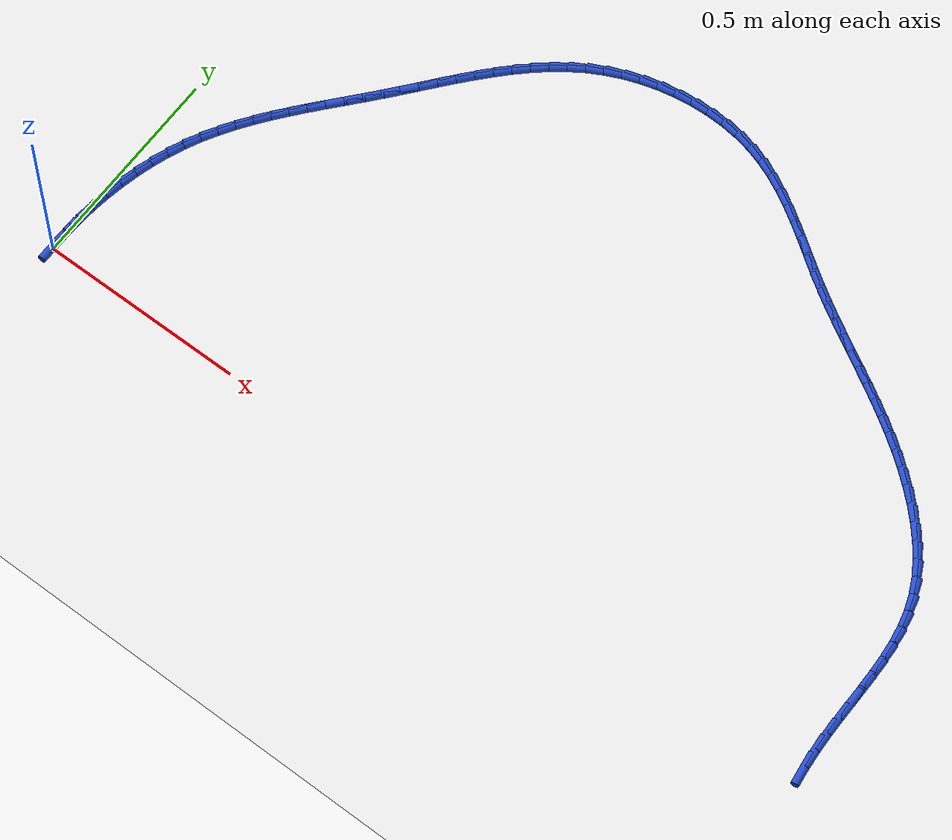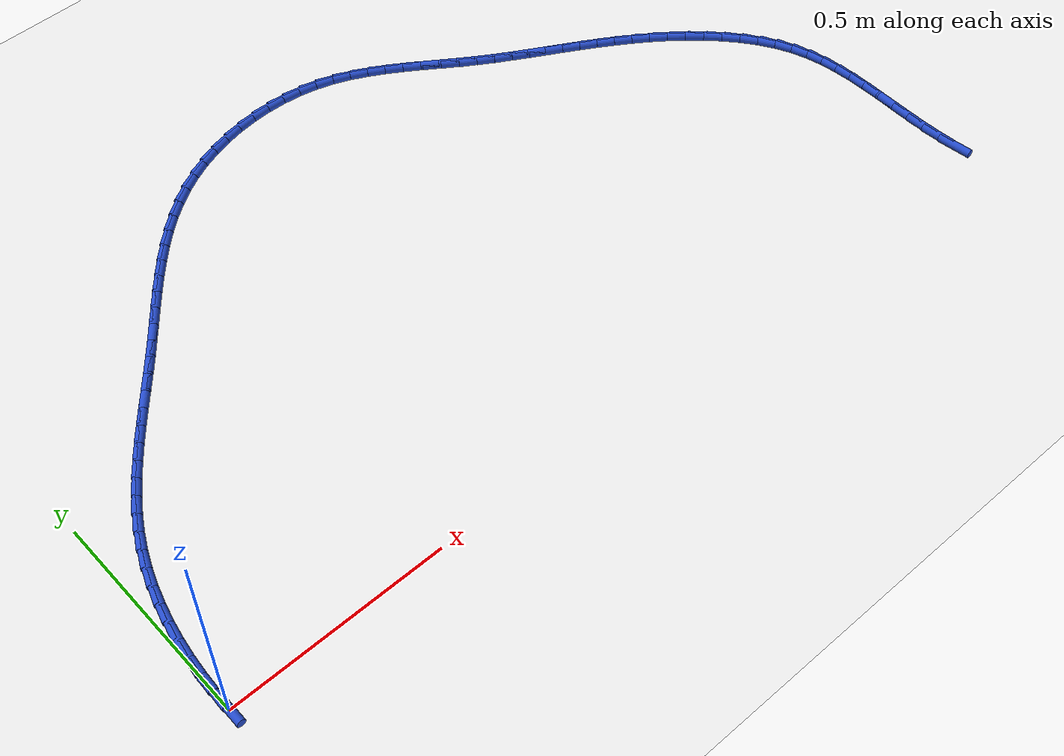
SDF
<sdf version="1.6">
 <world name="default">
  <model name="ground_plane">
   <static>1</static>
   <link name="link">
    <collision name="collision">
     <geometry><plane><normal>0 0 1</normal><size>100 100</size></plane></geometry>
     <surface><friction><ode><mu>100</mu><mu2>50</mu2></ode></friction></surface>
    </collision>
    <visual name="visual">
     <cast_shadows>0</cast_shadows>
     <geometry><plane><normal>0 0 1</normal><size>100 100</size></plane></geometry>
     <material>
      <script><uri>file://media/materials/scripts/gazebo.material</uri><name>Gazebo/WhiteGlow</name></script>
     </material>
    </visual>
   </link>
  </model>
  <model name="line">
   <link name="link_1">
    <pose>0.00028746095920389667 0.04235715882042236 0.01 0 1.57 1.522763177604085</pose>
    <collision name="collision">
     <geometry><cylinder><radius>0.01</radius><length>0.08</length></cylinder></geometry>
    </collision>
    <visual name="visual">
     <material>
      <script><name>Gazebo/Blue</name><uri>file://media/materials/scripts/gazebo.material</uri></script>
     </material>
     <geometry><cylinder><radius>0.01</radius><length>0.08</length></cylinder></geometry>
    </visual>
   </link>
   <link name="link_2">
    <pose>0.0023284698408756674 0.0848161483708669 0.01 0 1.57 1.4801706708943538</pose>
    <collision name="collision">
     <geometry><cylinder><radius>0.01</radius><length>0.08</length></cylinder></geometry>
    </collision>
    <visual name="visual">
     <material>
      <script><name>Gazebo/Blue</name><uri>file://media/materials/scripts/gazebo.material</uri></script>
     </material>
     <geometry><cylinder><radius>0.01</radius><length>0.08</length></cylinder></geometry>
    </visual>
   </link>
   <link name="link_3">
    <pose>0.00618078458582902 0.1272077047341136 0.01 0 1.57 1.4358977339599144</pose>
    <collision name="collision">
     <geometry><cylinder><radius>0.01</radius><length>0.08</length></cylinder></geometry>
    </collision>
    <visual name="visual">
     <material>
      <script><name>Gazebo/Blue</name><uri>file://media/materials/scripts/gazebo.material</uri></script>
     </material>
     <geometry><cylinder><radius>0.01</radius><length>0.08</length></cylinder></geometry>
    </visual>
   </link>
   <link name="link_4">
    <pose>0.011902163134877644 0.1693625639929425 0.01 0 1.57 1.3896101384911503</pose>
    <collision name="collision">
     <geometry><cylinder><radius>0.01</radius><length>0.08</length></cylinder></geometry>
    </collision>
    <visual name="visual">
     <material>
      <script><name>Gazebo/Blue</name><uri>file://media/materials/scripts/gazebo.material</uri></script>
     </material>
     <geometry><cylinder><radius>0.01</radius><length>0.08</length></cylinder></geometry>
    </visual>
   </link>
   <link name="link_5">
    <pose>0.019550363428835253 0.2111114622301337 0.01 0 1.57 1.3409750623026198</pose>
    <collision name="collision">
     <geometry><cylinder><radius>0.01</radius><length>0.08</length></cylinder></geometry>
    </collision>
    <visual name="visual">
     <material>
      <script><name>Gazebo/Blue</name><uri>file://media/materials/scripts/gazebo.material</uri></script>
     </material>
     <geometry><cylinder><radius>0.01</radius><length>0.08</length></cylinder></geometry>
    </visual>
   </link>
   <link name="link_6">
    <pose>0.029183143408515556 0.2522851355284672 0.01 0 1.57 1.2896651377609418</pose>
    <collision name="collision">
     <geometry><cylinder><radius>0.01</radius><length>0.08</length></cylinder></geometry>
    </collision>
    <visual name="visual">
     <material>
      <script><name>Gazebo/Blue</name><uri>file://media/materials/scripts/gazebo.material</uri></script>
     </material>
     <geometry><cylinder><radius>0.01</radius><length>0.08</length></cylinder></geometry>
    </visual>
   </link>
   <link name="link_7">
    <pose>0.04085826101473224 0.29271431997072317 0.01 0 1.57 1.2353662507474885</pose>
    <collision name="collision">
     <geometry><cylinder><radius>0.01</radius><length>0.08</length></cylinder></geometry>
    </collision>
    <visual name="visual">
     <material>
      <script><name>Gazebo/Blue</name><uri>file://media/materials/scripts/gazebo.material</uri></script>
     </material>
     <geometry><cylinder><radius>0.01</radius><length>0.08</length></cylinder></geometry>
    </visual>
   </link>
   <link name="link_8">
    <pose>0.054633474188298996 0.33222975163968144 0.01 0 1.57 1.1777899274220252</pose>
    <collision name="collision">
     <geometry><cylinder><radius>0.01</radius><length>0.08</length></cylinder></geometry>
    </collision>
    <visual name="visual">
     <material>
      <script><name>Gazebo/Blue</name><uri>file://media/materials/scripts/gazebo.material</uri></script>
     </material>
     <geometry><cylinder><radius>0.01</radius><length>0.08</length></cylinder></geometry>
    </visual>
   </link>
   <link name="link_9">
    <pose>0.07056654087002955 0.37066216661812235 0.01 0 1.57 1.1172198005887168</pose>
    <collision name="collision">
     <geometry><cylinder><radius>0.01</radius><length>0.08</length></cylinder></geometry>
    </collision>
    <visual name="visual">
     <material>
      <script><name>Gazebo/Blue</name><uri>file://media/materials/scripts/gazebo.material</uri></script>
     </material>
     <geometry><cylinder><radius>0.01</radius><length>0.08</length></cylinder></geometry>
    </visual>
   </link>
   <link name="link_10">
    <pose>0.0886993675038916 0.40785970762088225 0.01 0 1.57 1.059518374034115</pose>
    <collision name="collision">
     <geometry><cylinder><radius>0.01</radius><length>0.08</length></cylinder></geometry>
    </collision>
    <visual name="visual">
     <material>
      <script><name>Gazebo/Blue</name><uri>file://media/materials/scripts/gazebo.material</uri></script>
     </material>
     <geometry><cylinder><radius>0.01</radius><length>0.08</length></cylinder></geometry>
    </visual>
   </link>
   <link name="link_11">
    <pose>0.10889857330115774 0.44386300141609336 0.01 0 1.57 1.0087617799985393</pose>
    <collision name="collision">
     <geometry><cylinder><radius>0.01</radius><length>0.08</length></cylinder></geometry>
    </collision>
    <visual name="visual">
     <material>
      <script><name>Gazebo/Blue</name><uri>file://media/materials/scripts/gazebo.material</uri></script>
     </material>
     <geometry><cylinder><radius>0.01</radius><length>0.08</length></cylinder></geometry>
    </visual>
   </link>
   <link name="link_12">
    <pose>0.13092181477432416 0.47883232742197535 0.01 0 1.57 0.9653036912971279</pose>
    <collision name="collision">
     <geometry><cylinder><radius>0.01</radius><length>0.08</length></cylinder></geometry>
    </collision>
    <visual name="visual">
     <material>
      <script><name>Gazebo/Blue</name><uri>file://media/materials/scripts/gazebo.material</uri></script>
     </material>
     <geometry><cylinder><radius>0.01</radius><length>0.08</length></cylinder></geometry>
    </visual>
   </link>
   <link name="link_13">
    <pose>0.1545251090706547 0.5129297652544 0.01 0 1.57 0.9292409537150683</pose>
    <collision name="collision">
     <geometry><cylinder><radius>0.01</radius><length>0.08</length></cylinder></geometry>
    </collision>
    <visual name="visual">
     <material>
      <script><name>Gazebo/Blue</name><uri>file://media/materials/scripts/gazebo.material</uri></script>
     </material>
     <geometry><cylinder><radius>0.01</radius><length>0.08</length></cylinder></geometry>
    </visual>
   </link>
   <link name="link_14">
    <pose>0.17946447333741347 0.5463173945292396 0.01 0 1.57 0.9005362752324886</pose>
    <collision name="collision">
     <geometry><cylinder><radius>0.01</radius><length>0.08</length></cylinder></geometry>
    </collision>
    <visual name="visual">
     <material>
      <script><name>Gazebo/Blue</name><uri>file://media/materials/scripts/gazebo.material</uri></script>
     </material>
     <geometry><cylinder><radius>0.01</radius><length>0.08</length></cylinder></geometry>
    </visual>
   </link>
   <link name="link_15">
    <pose>0.20549592472186418 0.5791572948623656 0.01 0 1.57 0.8790779466856905</pose>
    <collision name="collision">
     <geometry><cylinder><radius>0.01</radius><length>0.08</length></cylinder></geometry>
    </collision>
    <visual name="visual">
     <material>
      <script><name>Gazebo/Blue</name><uri>file://media/materials/scripts/gazebo.material</uri></script>
     </material>
     <geometry><cylinder><radius>0.01</radius><length>0.08</length></cylinder></geometry>
    </visual>
   </link>
   <link name="link_16">
    <pose>0.2323754803712709 0.6116115458696497 0.01 0 1.57 0.8647265287988759</pose>
    <collision name="collision">
     <geometry><cylinder><radius>0.01</radius><length>0.08</length></cylinder></geometry>
    </collision>
    <visual name="visual">
     <material>
      <script><name>Gazebo/Blue</name><uri>file://media/materials/scripts/gazebo.material</uri></script>
     </material>
     <geometry><cylinder><radius>0.01</radius><length>0.08</length></cylinder></geometry>
    </visual>
   </link>
   <link name="link_17">
    <pose>0.2598591574328976 0.6438422271669644 0.01 0 1.57 0.8573477198979467</pose>
    <collision name="collision">
     <geometry><cylinder><radius>0.01</radius><length>0.08</length></cylinder></geometry>
    </collision>
    <visual name="visual">
     <material>
      <script><name>Gazebo/Blue</name><uri>file://media/materials/scripts/gazebo.material</uri></script>
     </material>
     <geometry><cylinder><radius>0.01</radius><length>0.08</length></cylinder></geometry>
    </visual>
   </link>
   <link name="link_18">
    <pose>0.28770297305400805 0.676011418370181 0.01 0 1.57 0.8568325617086788</pose>
    <collision name="collision">
     <geometry><cylinder><radius>0.01</radius><length>0.08</length></cylinder></geometry>
    </collision>
    <visual name="visual">
     <material>
      <script><name>Gazebo/Blue</name><uri>file://media/materials/scripts/gazebo.material</uri></script>
     </material>
     <geometry><cylinder><radius>0.01</radius><length>0.08</length></cylinder></geometry>
    </visual>
   </link>
   <link name="link_19">
    <pose>0.3156629443818662 0.7082811990951715 0.01 0 1.57 0.8631066420745012</pose>
    <collision name="collision">
     <geometry><cylinder><radius>0.01</radius><length>0.08</length></cylinder></geometry>
    </collision>
    <visual name="visual">
     <material>
      <script><name>Gazebo/Blue</name><uri>file://media/materials/scripts/gazebo.material</uri></script>
     </material>
     <geometry><cylinder><radius>0.01</radius><length>0.08</length></cylinder></geometry>
    </visual>
   </link>
   <link name="link_20">
    <pose>0.34349508856373623 0.7408136489578082 0.01 0 1.57 0.8751013430125898</pose>
    <collision name="collision">
     <geometry><cylinder><radius>0.01</radius><length>0.08</length></cylinder></geometry>
    </collision>
    <visual name="visual">
     <material>
      <script><name>Gazebo/Blue</name><uri>file://media/materials/scripts/gazebo.material</uri></script>
     </material>
     <geometry><cylinder><radius>0.01</radius><length>0.08</length></cylinder></geometry>
    </visual>
   </link>
   <link name="link_21">
    <pose>0.37098738198274256 0.773740297546031 0.01 0 1.57 0.8837434149172014</pose>
    <collision name="collision">
     <geometry><cylinder><radius>0.01</radius><length>0.08</length></cylinder></geometry>
    </collision>
    <visual name="visual">
     <material>
      <script><name>Gazebo/Blue</name><uri>file://media/materials/scripts/gazebo.material</uri></script>
     </material>
     <geometry><cylinder><radius>0.01</radius><length>0.08</length></cylinder></geometry>
    </visual>
   </link>
   <link name="link_22">
    <pose>0.3982101062944335 0.8069228171209297 0.01 0 1.57 0.884342227536992</pose>
    <collision name="collision">
     <geometry><cylinder><radius>0.01</radius><length>0.08</length></cylinder></geometry>
    </collision>
    <visual name="visual">
     <material>
      <script><name>Gazebo/Blue</name><uri>file://media/materials/scripts/gazebo.material</uri></script>
     </material>
     <geometry><cylinder><radius>0.01</radius><length>0.08</length></cylinder></geometry>
    </visual>
   </link>
   <link name="link_23">
    <pose>0.425380674754983 0.8400822359517205 0.01 0 1.57 0.87683117857295</pose>
    <collision name="collision">
     <geometry><cylinder><radius>0.01</radius><length>0.08</length></cylinder></geometry>
    </collision>
    <visual name="visual">
     <material>
      <script><name>Gazebo/Blue</name><uri>file://media/materials/scripts/gazebo.material</uri></script>
     </material>
     <geometry><cylinder><radius>0.01</radius><length>0.08</length></cylinder></geometry>
    </visual>
   </link>
   <link name="link_24">
    <pose>0.45271777054567386 0.872938368378484 0.01 0 1.57 0.861098824956909</pose>
    <collision name="collision">
     <geometry><cylinder><radius>0.01</radius><length>0.08</length></cylinder></geometry>
    </collision>
    <visual name="visual">
     <material>
      <script><name>Gazebo/Blue</name><uri>file://media/materials/scripts/gazebo.material</uri></script>
     </material>
     <geometry><cylinder><radius>0.01</radius><length>0.08</length></cylinder></geometry>
    </visual>
   </link>
   <link name="link_25">
    <pose>0.4804400768477891 0.9052110287413015 0.01 0 1.57 0.8369602239063719</pose>
    <collision name="collision">
     <geometry><cylinder><radius>0.01</radius><length>0.08</length></cylinder></geometry>
    </collision>
    <visual name="visual">
     <material>
      <script><name>Gazebo/Blue</name><uri>file://media/materials/scripts/gazebo.material</uri></script>
     </material>
     <geometry><cylinder><radius>0.01</radius><length>0.08</length></cylinder></geometry>
    </visual>
   </link>
   <link name="link_26">
    <pose>0.508766276842612 0.9366200313802546 0.01 0 1.57 0.8041858604167499</pose>
    <collision name="collision">
     <geometry><cylinder><radius>0.01</radius><length>0.08</length></cylinder></geometry>
    </collision>
    <visual name="visual">
     <material>
      <script><name>Gazebo/Blue</name><uri>file://media/materials/scripts/gazebo.material</uri></script>
     </material>
     <geometry><cylinder><radius>0.01</radius><length>0.08</length></cylinder></geometry>
    </visual>
   </link>
   <link name="link_27">
    <pose>0.5379150537114253 0.9668851906354239 0.01 0 1.57 0.7625513848017142</pose>
    <collision name="collision">
     <geometry><cylinder><radius>0.01</radius><length>0.08</length></cylinder></geometry>
    </collision>
    <visual name="visual">
     <material>
      <script><name>Gazebo/Blue</name><uri>file://media/materials/scripts/gazebo.material</uri></script>
     </material>
     <geometry><cylinder><radius>0.01</radius><length>0.08</length></cylinder></geometry>
    </visual>
   </link>
   <link name="link_28">
    <pose>0.5681050906355118 0.9957263208468906 0.01 0 1.57 0.7119124789078913</pose>
    <collision name="collision">
     <geometry><cylinder><radius>0.01</radius><length>0.08</length></cylinder></geometry>
    </collision>
    <visual name="visual">
     <material>
      <script><name>Gazebo/Blue</name><uri>file://media/materials/scripts/gazebo.material</uri></script>
     </material>
     <geometry><cylinder><radius>0.01</radius><length>0.08</length></cylinder></geometry>
    </visual>
   </link>
   <link name="link_29">
    <pose>0.5995550707961551 1.0228632363547359 0.01 0 1.57 0.6523063235169997</pose>
    <collision name="collision">
     <geometry><cylinder><radius>0.01</radius><length>0.08</length></cylinder></geometry>
    </collision>
    <visual name="visual">
     <material>
      <script><name>Gazebo/Blue</name><uri>file://media/materials/scripts/gazebo.material</uri></script>
     </material>
     <geometry><cylinder><radius>0.01</radius><length>0.08</length></cylinder></geometry>
    </visual>
   </link>
   <link name="link_30">
    <pose>0.6324836773746376 1.048015751499041 0.01 0 1.57 0.5840732497624731</pose>
    <collision name="collision">
     <geometry><cylinder><radius>0.01</radius><length>0.08</length></cylinder></geometry>
    </collision>
    <visual name="visual">
     <material>
      <script><name>Gazebo/Blue</name><uri>file://media/materials/scripts/gazebo.material</uri></script>
     </material>
     <geometry><cylinder><radius>0.01</radius><length>0.08</length></cylinder></geometry>
    </visual>
   </link>
   <link name="link_31">
    <pose>0.6671095935522425 1.0709036806198868 0.01 0 1.57 0.5079787694916206</pose>
    <collision name="collision">
     <geometry><cylinder><radius>0.01</radius><length>0.08</length></cylinder></geometry>
    </collision>
    <visual name="visual">
     <material>
      <script><name>Gazebo/Blue</name><uri>file://media/materials/scripts/gazebo.material</uri></script>
     </material>
     <geometry><cylinder><radius>0.01</radius><length>0.08</length></cylinder></geometry>
    </visual>
   </link>
   <link name="link_32">
    <pose>0.7036514808377259 1.0912468442134728 0.01 0 1.57 0.42721877108998774</pose>
    <collision name="collision">
     <geometry><cylinder><radius>0.01</radius><length>0.08</length></cylinder></geometry>
    </collision>
    <visual name="visual">
     <material>
      <script><name>Gazebo/Blue</name><uri>file://media/materials/scripts/gazebo.material</uri></script>
     </material>
     <geometry><cylinder><radius>0.01</radius><length>0.08</length></cylinder></geometry>
    </visual>
   </link>
   <link name="link_33">
    <pose>0.7422067815416707 1.10879949529804 0.01 0 1.57 0.34858312195354996</pose>
    <collision name="collision">
     <geometry><cylinder><radius>0.01</radius><length>0.08</length></cylinder></geometry>
    </collision>
    <visual name="visual">
     <material>
      <script><name>Gazebo/Blue</name><uri>file://media/materials/scripts/gazebo.material</uri></script>
     </material>
     <geometry><cylinder><radius>0.01</radius><length>0.08</length></cylinder></geometry>
    </visual>
   </link>
   <link name="link_34">
    <pose>0.7824672831377649 1.1234311138469864 0.01 0 1.57 0.27220053162975905</pose>
    <collision name="collision">
     <geometry><cylinder><radius>0.01</radius><length>0.08</length></cylinder></geometry>
    </collision>
    <visual name="visual">
     <material>
      <script><name>Gazebo/Blue</name><uri>file://media/materials/scripts/gazebo.material</uri></script>
     </material>
     <geometry><cylinder><radius>0.01</radius><length>0.08</length></cylinder></geometry>
    </visual>
   </link>
   <link name="link_35">
    <pose>0.8240400159422563 1.1350352552502754 0.01 0 1.57 0.1967578196151451</pose>
    <collision name="collision">
     <geometry><cylinder><radius>0.01</radius><length>0.08</length></cylinder></geometry>
    </collision>
    <visual name="visual">
     <material>
      <script><name>Gazebo/Blue</name><uri>file://media/materials/scripts/gazebo.material</uri></script>
     </material>
     <geometry><cylinder><radius>0.01</radius><length>0.08</length></cylinder></geometry>
    </visual>
   </link>
   <link name="link_36">
    <pose>0.8665320102713926 1.1435054748978712 0.01 0 1.57 0.12097910452303008</pose>
    <collision name="collision">
     <geometry><cylinder><radius>0.01</radius><length>0.08</length></cylinder></geometry>
    </collision>
    <visual name="visual">
     <material>
      <script><name>Gazebo/Blue</name><uri>file://media/materials/scripts/gazebo.material</uri></script>
     </material>
     <geometry><cylinder><radius>0.01</radius><length>0.08</length></cylinder></geometry>
    </visual>
   </link>
   <link name="link_37">
    <pose>0.9095502964414214 1.148735328179737 0.01 0 1.57 0.04361015673929334</pose>
    <collision name="collision">
     <geometry><cylinder><radius>0.01</radius><length>0.08</length></cylinder></geometry>
    </collision>
    <visual name="visual">
     <material>
      <script><name>Gazebo/Blue</name><uri>file://media/materials/scripts/gazebo.material</uri></script>
     </material>
     <geometry><cylinder><radius>0.01</radius><length>0.08</length></cylinder></geometry>
    </visual>
   </link>
   <link name="link_38">
    <pose>0.9527019047685901 1.1506183704858357 0.01 0 1.57 -0.03659222740040497</pose>
    <collision name="collision">
     <geometry><cylinder><radius>0.01</radius><length>0.08</length></cylinder></geometry>
    </collision>
    <visual name="visual">
     <material>
      <script><name>Gazebo/Blue</name><uri>file://media/materials/scripts/gazebo.material</uri></script>
     </material>
     <geometry><cylinder><radius>0.01</radius><length>0.08</length></cylinder></geometry>
    </visual>
   </link>
   <link name="link_39">
    <pose>0.9955938655691466 1.1490481572061317 0.01 0 1.57 -0.12085681771139328</pose>
    <collision name="collision">
     <geometry><cylinder><radius>0.01</radius><length>0.08</length></cylinder></geometry>
    </collision>
    <visual name="visual">
     <material>
      <script><name>Gazebo/Blue</name><uri>file://media/materials/scripts/gazebo.material</uri></script>
     </material>
     <geometry><cylinder><radius>0.01</radius><length>0.08</length></cylinder></geometry>
    </visual>
   </link>
   <link name="link_40">
    <pose>1.037833209159338 1.143918243730588 0.01 0 1.57 -0.21036964972758848</pose>
    <collision name="collision">
     <geometry><cylinder><radius>0.01</radius><length>0.08</length></cylinder></geometry>
    </collision>
    <visual name="visual">
     <material>
      <script><name>Gazebo/Blue</name><uri>file://media/materials/scripts/gazebo.material</uri></script>
     </material>
     <geometry><cylinder><radius>0.01</radius><length>0.08</length></cylinder></geometry>
    </visual>
   </link>
   <link name="link_41">
    <pose>1.0790269658554126 1.1351221854491675 0.01 0 1.57 -0.3051452091076937</pose>
    <collision name="collision">
     <geometry><cylinder><radius>0.01</radius><length>0.08</length></cylinder></geometry>
    </collision>
    <visual name="visual">
     <material>
      <script><name>Gazebo/Blue</name><uri>file://media/materials/scripts/gazebo.material</uri></script>
     </material>
     <geometry><cylinder><radius>0.01</radius><length>0.08</length></cylinder></geometry>
    </visual>
   </link>
   <link name="link_42">
    <pose>1.1188149187416796 1.122589663245133 0.01 0 1.57 -0.39360961031222264</pose>
    <collision name="collision">
     <geometry><cylinder><radius>0.01</radius><length>0.08</length></cylinder></geometry>
    </collision>
    <visual name="visual">
     <material>
      <script><name>Gazebo/Blue</name><uri>file://media/materials/scripts/gazebo.material</uri></script>
     </material>
     <geometry><cylinder><radius>0.01</radius><length>0.08</length></cylinder></geometry>
    </visual>
   </link>
   <link name="link_43">
    <pose>1.157198799114459 1.1066495779297358 0.01 0 1.57 -0.46724245987568186</pose>
    <collision name="collision">
     <geometry><cylinder><radius>0.01</radius><length>0.08</length></cylinder></geometry>
    </collision>
    <visual name="visual">
     <material>
      <script><name>Gazebo/Blue</name><uri>file://media/materials/scripts/gazebo.material</uri></script>
     </material>
     <geometry><cylinder><radius>0.01</radius><length>0.08</length></cylinder></geometry>
    </visual>
   </link>
   <link name="link_44">
    <pose>1.1944052243499788 1.08787887409963 0.01 0 1.57 -0.5253866980923065</pose>
    <collision name="collision">
     <geometry><cylinder><radius>0.01</radius><length>0.08</length></cylinder></geometry>
    </collision>
    <visual name="visual">
     <material>
      <script><name>Gazebo/Blue</name><uri>file://media/materials/scripts/gazebo.material</uri></script>
     </material>
     <geometry><cylinder><radius>0.01</radius><length>0.08</length></cylinder></geometry>
    </visual>
   </link>
   <link name="link_45">
    <pose>1.2306641906466071 1.0668582231087451 0.01 0 1.57 -0.5681819087192342</pose>
    <collision name="collision">
     <geometry><cylinder><radius>0.01</radius><length>0.08</length></cylinder></geometry>
    </collision>
    <visual name="visual">
     <material>
      <script><name>Gazebo/Blue</name><uri>file://media/materials/scripts/gazebo.material</uri></script>
     </material>
     <geometry><cylinder><radius>0.01</radius><length>0.08</length></cylinder></geometry>
    </visual>
   </link>
   <link name="link_46">
    <pose>1.2662056942027142 1.04416829631101 0.01 0 1.57 -0.5960401882315445</pose>
    <collision name="collision">
     <geometry><cylinder><radius>0.01</radius><length>0.08</length></cylinder></geometry>
    </collision>
    <visual name="visual">
     <material>
      <script><name>Gazebo/Blue</name><uri>file://media/materials/scripts/gazebo.material</uri></script>
     </material>
     <geometry><cylinder><radius>0.01</radius><length>0.08</length></cylinder></geometry>
    </visual>
   </link>
   <link name="link_47">
    <pose>1.301259731216669 1.0203897650603542 0.01 0 1.57 -0.6093526773493374</pose>
    <collision name="collision">
     <geometry><cylinder><radius>0.01</radius><length>0.08</length></cylinder></geometry>
    </collision>
    <visual name="visual">
     <material>
      <script><name>Gazebo/Blue</name><uri>file://media/materials/scripts/gazebo.material</uri></script>
     </material>
     <geometry><cylinder><radius>0.01</radius><length>0.08</length></cylinder></geometry>
    </visual>
   </link>
   <link name="link_48">
    <pose>1.3360562978868402 0.996103300710706 0.01 0 1.57 -0.6083160347230925</pose>
    <collision name="collision">
     <geometry><cylinder><radius>0.01</radius><length>0.08</length></cylinder></geometry>
    </collision>
    <visual name="visual">
     <material>
      <script><name>Gazebo/Blue</name><uri>file://media/materials/scripts/gazebo.material</uri></script>
     </material>
     <geometry><cylinder><radius>0.01</radius><length>0.08</length></cylinder></geometry>
    </visual>
   </link>
   <link name="link_49">
    <pose>1.370825390411598 0.9718895746159956 0.01 0 1.57 -0.5928570110164331</pose>
    <collision name="collision">
     <geometry><cylinder><radius>0.01</radius><length>0.08</length></cylinder></geometry>
    </collision>
    <visual name="visual">
     <material>
      <script><name>Gazebo/Blue</name><uri>file://media/materials/scripts/gazebo.material</uri></script>
     </material>
     <geometry><cylinder><radius>0.01</radius><length>0.08</length></cylinder></geometry>
    </visual>
   </link>
   <link name="link_50">
    <pose>1.4057969723211037 0.9483291705678364 0.01 0 1.57 -0.5671825561247898</pose>
    <collision name="collision">
     <geometry><cylinder><radius>0.01</radius><length>0.08</length></cylinder></geometry>
    </collision>
    <visual name="visual">
     <material>
      <script><name>Gazebo/Blue</name><uri>file://media/materials/scripts/gazebo.material</uri></script>
     </material>
     <geometry><cylinder><radius>0.01</radius><length>0.08</length></cylinder></geometry>
    </visual>
   </link>
   <link name="link_51">
    <pose>1.4411329112186873 0.9258201512635085 0.01 0 1.57 -0.5452758185804613</pose>
    <collision name="collision">
     <geometry><cylinder><radius>0.01</radius><length>0.08</length></cylinder></geometry>
    </collision>
    <visual name="visual">
     <material>
      <script><name>Gazebo/Blue</name><uri>file://media/materials/scripts/gazebo.material</uri></script>
     </material>
     <geometry><cylinder><radius>0.01</radius><length>0.08</length></cylinder></geometry>
    </visual>
   </link>
   <link name="link_52">
    <pose>1.47678355045517 0.9041936198207343 0.01 0 1.57 -0.5300640518500292</pose>
    <collision name="collision">
     <geometry><cylinder><radius>0.01</radius><length>0.08</length></cylinder></geometry>
    </collision>
    <visual name="visual">
     <material>
      <script><name>Gazebo/Blue</name><uri>file://media/materials/scripts/gazebo.material</uri></script>
     </material>
     <geometry><cylinder><radius>0.01</radius><length>0.08</length></cylinder></geometry>
    </visual>
   </link>
   <link name="link_53">
    <pose>1.5126582826934436 0.8831709170744877 0.01 0 1.57 -0.5216841611636733</pose>
    <collision name="collision">
     <geometry><cylinder><radius>0.01</radius><length>0.08</length></cylinder></geometry>
    </collision>
    <visual name="visual">
     <material>
      <script><name>Gazebo/Blue</name><uri>file://media/materials/scripts/gazebo.material</uri></script>
     </material>
     <geometry><cylinder><radius>0.01</radius><length>0.08</length></cylinder></geometry>
    </visual>
   </link>
   <link name="link_54">
    <pose>1.548666500596397 0.8624733838597424 0.01 0 1.57 -0.5201992938097166</pose>
    <collision name="collision">
     <geometry><cylinder><radius>0.01</radius><length>0.08</length></cylinder></geometry>
    </collision>
    <visual name="visual">
     <material>
      <script><name>Gazebo/Blue</name><uri>file://media/materials/scripts/gazebo.material</uri></script>
     </material>
     <geometry><cylinder><radius>0.01</radius><length>0.08</length></cylinder></geometry>
    </visual>
   </link>
   <link name="link_55">
    <pose>1.5847175968269216 0.841822361011473 0.01 0 1.57 -0.5256091212722444</pose>
    <collision name="collision">
     <geometry><cylinder><radius>0.01</radius><length>0.08</length></cylinder></geometry>
    </collision>
    <visual name="visual">
     <material>
      <script><name>Gazebo/Blue</name><uri>file://media/materials/scripts/gazebo.material</uri></script>
     </material>
     <geometry><cylinder><radius>0.01</radius><length>0.08</length></cylinder></geometry>
    </visual>
   </link>
   <link name="link_56">
    <pose>1.620720964047909 0.8209391893646535 0.01 0 1.57 -0.5378520465299659</pose>
    <collision name="collision">
     <geometry><cylinder><radius>0.01</radius><length>0.08</length></cylinder></geometry>
    </collision>
    <visual name="visual">
     <material>
      <script><name>Gazebo/Blue</name><uri>file://media/materials/scripts/gazebo.material</uri></script>
     </material>
     <geometry><cylinder><radius>0.01</radius><length>0.08</length></cylinder></geometry>
    </visual>
   </link>
   <link name="link_57">
    <pose>1.656585994922247 0.7995452097542576 0.01 0 1.57 -0.556799187580998</pose>
    <collision name="collision">
     <geometry><cylinder><radius>0.01</radius><length>0.08</length></cylinder></geometry>
    </collision>
    <visual name="visual">
     <material>
      <script><name>Gazebo/Blue</name><uri>file://media/materials/scripts/gazebo.material</uri></script>
     </material>
     <geometry><cylinder><radius>0.01</radius><length>0.08</length></cylinder></geometry>
    </visual>
   </link>
   <link name="link_58">
    <pose>1.6922220821128289 0.77736176301526 0.01 0 1.57 -0.5822411889681539</pose>
    <collision name="collision">
     <geometry><cylinder><radius>0.01</radius><length>0.08</length></cylinder></geometry>
    </collision>
    <visual name="visual">
     <material>
      <script><name>Gazebo/Blue</name><uri>file://media/materials/scripts/gazebo.material</uri></script>
     </material>
     <geometry><cylinder><radius>0.01</radius><length>0.08</length></cylinder></geometry>
    </visual>
   </link>
   <link name="link_59">
    <pose>1.7275386182825438 0.7541101899826348 0.01 0 1.57 -0.6138701900718513</pose>
    <collision name="collision">
     <geometry><cylinder><radius>0.01</radius><length>0.08</length></cylinder></geometry>
    </collision>
    <visual name="visual">
     <material>
      <script><name>Gazebo/Blue</name><uri>file://media/materials/scripts/gazebo.material</uri></script>
     </material>
     <geometry><cylinder><radius>0.01</radius><length>0.08</length></cylinder></geometry>
    </visual>
   </link>
   <link name="link_60">
    <pose>1.7624449960942832 0.7295118314913559 0.01 0 1.57 -0.6512013186573202</pose>
    <collision name="collision">
     <geometry><cylinder><radius>0.01</radius><length>0.08</length></cylinder></geometry>
    </collision>
    <visual name="visual">
     <material>
      <script><name>Gazebo/Blue</name><uri>file://media/materials/scripts/gazebo.material</uri></script>
     </material>
     <geometry><cylinder><radius>0.01</radius><length>0.08</length></cylinder></geometry>
    </visual>
   </link>
   <link name="link_61">
    <pose>1.7968209020543795 0.7033138949016474 0.01 0 1.57 -0.6936236331819965</pose>
    <collision name="collision">
     <geometry><cylinder><radius>0.01</radius><length>0.08</length></cylinder></geometry>
    </collision>
    <visual name="visual">
     <material>
      <script><name>Gazebo/Blue</name><uri>file://media/materials/scripts/gazebo.material</uri></script>
     </material>
     <geometry><cylinder><radius>0.01</radius><length>0.08</length></cylinder></geometry>
    </visual>
   </link>
   <link name="link_62">
    <pose>1.830299769531715 0.6754780115765598 0.01 0 1.57 -0.7417293635034974</pose>
    <collision name="collision">
     <geometry><cylinder><radius>0.01</radius><length>0.08</length></cylinder></geometry>
    </collision>
    <visual name="visual">
     <material>
      <script><name>Gazebo/Blue</name><uri>file://media/materials/scripts/gazebo.material</uri></script>
     </material>
     <geometry><cylinder><radius>0.01</radius><length>0.08</length></cylinder></geometry>
    </visual>
   </link>
   <link name="link_63">
    <pose>1.8623932691809577 0.6460718373093204 0.01 0 1.57 -0.7966712455004558</pose>
    <collision name="collision">
     <geometry><cylinder><radius>0.01</radius><length>0.08</length></cylinder></geometry>
    </collision>
    <visual name="visual">
     <material>
      <script><name>Gazebo/Blue</name><uri>file://media/materials/scripts/gazebo.material</uri></script>
     </material>
     <geometry><cylinder><radius>0.01</radius><length>0.08</length></cylinder></geometry>
    </visual>
   </link>
   <link name="link_64">
    <pose>1.892612206219793 0.615163781469184 0.01 0 1.57 -0.8597887696904641</pose>
    <collision name="collision">
     <geometry><cylinder><radius>0.01</radius><length>0.08</length></cylinder></geometry>
    </collision>
    <visual name="visual">
     <material>
      <script><name>Gazebo/Blue</name><uri>file://media/materials/scripts/gazebo.material</uri></script>
     </material>
     <geometry><cylinder><radius>0.01</radius><length>0.08</length></cylinder></geometry>
    </visual>
   </link>
   <link name="link_65">
    <pose>1.9204673858659103 0.582822253425406 0.01 0 1.57 -0.9325892000217171</pose>
    <collision name="collision">
     <geometry><cylinder><radius>0.01</radius><length>0.08</length></cylinder></geometry>
    </collision>
    <visual name="visual">
     <material>
      <script><name>Gazebo/Blue</name><uri>file://media/materials/scripts/gazebo.material</uri></script>
     </material>
     <geometry><cylinder><radius>0.01</radius><length>0.08</length></cylinder></geometry>
    </visual>
   </link>
   <link name="link_66">
    <pose>1.9454696133369975 0.549115662547241 0.01 0 1.57 -1.0166663605380593</pose>
    <collision name="collision">
     <geometry><cylinder><radius>0.01</radius><length>0.08</length></cylinder></geometry>
    </collision>
    <visual name="visual">
     <material>
      <script><name>Gazebo/Blue</name><uri>file://media/materials/scripts/gazebo.material</uri></script>
     </material>
     <geometry><cylinder><radius>0.01</radius><length>0.08</length></cylinder></geometry>
    </visual>
   </link>
   <link name="link_67">
    <pose>1.9671296938507412 0.5141124182039443 0.01 0 1.57 -1.113505925142746</pose>
    <collision name="collision">
     <geometry><cylinder><radius>0.01</radius><length>0.08</length></cylinder></geometry>
    </collision>
    <visual name="visual">
     <material>
      <script><name>Gazebo/Blue</name><uri>file://media/materials/scripts/gazebo.material</uri></script>
     </material>
     <geometry><cylinder><radius>0.01</radius><length>0.08</length></cylinder></geometry>
    </visual>
   </link>
   <link name="link_68">
    <pose>1.9849584326248293 0.47788092976477053 0.01 0 1.57 -1.2220798623186295</pose>
    <collision name="collision">
     <geometry><cylinder><radius>0.01</radius><length>0.08</length></cylinder></geometry>
    </collision>
    <visual name="visual">
     <material>
      <script><name>Gazebo/Blue</name><uri>file://media/materials/scripts/gazebo.material</uri></script>
     </material>
     <geometry><cylinder><radius>0.01</radius><length>0.08</length></cylinder></geometry>
    </visual>
   </link>
   <link name="link_69">
    <pose>1.9985529197439893 0.4404897407301482 0.01 0 1.57 -1.3246336202826159</pose>
    <collision name="collision">
     <geometry><cylinder><radius>0.01</radius><length>0.08</length></cylinder></geometry>
    </collision>
    <visual name="visual">
     <material>
      <script><name>Gazebo/Blue</name><uri>file://media/materials/scripts/gazebo.material</uri></script>
     </material>
     <geometry><cylinder><radius>0.01</radius><length>0.08</length></cylinder></geometry>
    </visual>
   </link>
   <link name="link_70">
    <pose>2.008221655333091 0.4020085004985167 0.01 0 1.57 -1.4101304700232804</pose>
    <collision name="collision">
     <geometry><cylinder><radius>0.01</radius><length>0.08</length></cylinder></geometry>
    </collision>
    <visual name="visual">
     <material>
      <script><name>Gazebo/Blue</name><uri>file://media/materials/scripts/gazebo.material</uri></script>
     </material>
     <geometry><cylinder><radius>0.01</radius><length>0.08</length></cylinder></geometry>
    </visual>
   </link>
   <link name="link_71">
    <pose>2.014623311146789 0.3625074028155808 0.01 0 1.57 -1.4772353694168574</pose>
    <collision name="collision">
     <geometry><cylinder><radius>0.01</radius><length>0.08</length></cylinder></geometry>
    </collision>
    <visual name="visual">
     <material>
      <script><name>Gazebo/Blue</name><uri>file://media/materials/scripts/gazebo.material</uri></script>
     </material>
     <geometry><cylinder><radius>0.01</radius><length>0.08</length></cylinder></geometry>
    </visual>
   </link>
   <link name="link_72">
    <pose>2.0184190046161903 0.32205664522888766 0.01 0 1.57 -1.5260442591885623</pose>
    <collision name="collision">
     <geometry><cylinder><radius>0.01</radius><length>0.08</length></cylinder></geometry>
    </collision>
    <visual name="visual">
     <material>
      <script><name>Gazebo/Blue</name><uri>file://media/materials/scripts/gazebo.material</uri></script>
     </material>
     <geometry><cylinder><radius>0.01</radius><length>0.08</length></cylinder></geometry>
    </visual>
   </link>
   <link name="link_73">
    <pose>2.0202698531724037 0.28072642528598374 0.01 0 1.57 -1.5573389520387066</pose>
    <collision name="collision">
     <geometry><cylinder><radius>0.01</radius><length>0.08</length></cylinder></geometry>
    </collision>
    <visual name="visual">
     <material>
      <script><name>Gazebo/Blue</name><uri>file://media/materials/scripts/gazebo.material</uri></script>
     </material>
     <geometry><cylinder><radius>0.01</radius><length>0.08</length></cylinder></geometry>
    </visual>
   </link>
   <link name="link_74">
    <pose>2.0208369742465373 0.23858694053441667 0.01 0 1.57 1.5695022311862752</pose>
    <collision name="collision">
     <geometry><cylinder><radius>0.01</radius><length>0.08</length></cylinder></geometry>
    </collision>
    <visual name="visual">
     <material>
      <script><name>Gazebo/Blue</name><uri>file://media/materials/scripts/gazebo.material</uri></script>
     </material>
     <geometry><cylinder><radius>0.01</radius><length>0.08</length></cylinder></geometry>
    </visual>
   </link>
   <link name="link_75">
    <pose>2.020781485269698 0.19570838852173292 0.01 0 1.57 1.5704063703940658</pose>
    <collision name="collision">
     <geometry><cylinder><radius>0.01</radius><length>0.08</length></cylinder></geometry>
    </collision>
    <visual name="visual">
     <material>
      <script><name>Gazebo/Blue</name><uri>file://media/materials/scripts/gazebo.material</uri></script>
     </material>
     <geometry><cylinder><radius>0.01</radius><length>0.08</length></cylinder></geometry>
    </visual>
   </link>
   <link name="link_76">
    <pose>2.0207645036729955 0.1521609667954791 0.01 0 1.57 -1.555334283552433</pose>
    <collision name="collision">
     <geometry><cylinder><radius>0.01</radius><length>0.08</length></cylinder></geometry>
    </collision>
    <visual name="visual">
     <material>
      <script><name>Gazebo/Blue</name><uri>file://media/materials/scripts/gazebo.material</uri></script>
     </material>
     <geometry><cylinder><radius>0.01</radius><length>0.08</length></cylinder></geometry>
    </visual>
   </link>
   <link name="link_77">
    <pose>2.0214471468875366 0.10801487290320273 0.01 0 1.57 -1.5250888397266968</pose>
    <collision name="collision">
     <geometry><cylinder><radius>0.01</radius><length>0.08</length></cylinder></geometry>
    </collision>
    <visual name="visual">
     <material>
      <script><name>Gazebo/Blue</name><uri>file://media/materials/scripts/gazebo.material</uri></script>
     </material>
     <geometry><cylinder><radius>0.01</radius><length>0.08</length></cylinder></geometry>
    </visual>
   </link>
   <link name="link_78">
    <pose>2.0234905323444288 0.06334030439245003 0.01 0 1.57 -1.4817055375526864</pose>
    <collision name="collision">
     <geometry><cylinder><radius>0.01</radius><length>0.08</length></cylinder></geometry>
    </collision>
    <visual name="visual">
     <material>
      <script><name>Gazebo/Blue</name><uri>file://media/materials/scripts/gazebo.material</uri></script>
     </material>
     <geometry><cylinder><radius>0.01</radius><length>0.08</length></cylinder></geometry>
    </visual>
   </link>
   <link name="link_79">
    <pose>2.0275218260089516 0.018210809359801367 0.01 0 1.57 -1.439189124756693</pose>
    <collision name="collision">
     <geometry><cylinder><radius>0.01</radius><length>0.08</length></cylinder></geometry>
    </collision>
    <visual name="visual">
     <material>
      <script><name>Gazebo/Blue</name><uri>file://media/materials/scripts/gazebo.material</uri></script>
     </material>
     <geometry><cylinder><radius>0.01</radius><length>0.08</length></cylinder></geometry>
    </visual>
   </link>
   <link name="link_160">
    <pose>-8.673617379884035e-18 8.326672684688674e-17 0.01 0 1.57 1.56415900101215</pose>
    <collision name="collision">
     <geometry><cylinder><radius>0.01</radius><length>0.08</length></cylinder></geometry>
    </collision>
    <visual name="visual">
     <material>
      <script><name>Gazebo/Blue</name><uri>file://media/materials/scripts/gazebo.material</uri></script>
     </material>
     <geometry><cylinder><radius>0.01</radius><length>0.08</length></cylinder></geometry>
    </visual>
   </link>
   <link name="link_161">
    <pose>0.00028133546774133586 0.04238624795760044 0.01 0 1.57 1.5641590010121502</pose>
    <collision name="collision">
     <geometry><cylinder><radius>0.01</radius><length>0.08</length></cylinder></geometry>
    </collision>
    <visual name="visual">
     <material>
      <script><name>Gazebo/Blue</name><uri>file://media/materials/scripts/gazebo.material</uri></script>
     </material>
     <geometry><cylinder><radius>0.01</radius><length>0.08</length></cylinder></geometry>
    </visual>
   </link>
  </model>
 </world>
</sdf>
